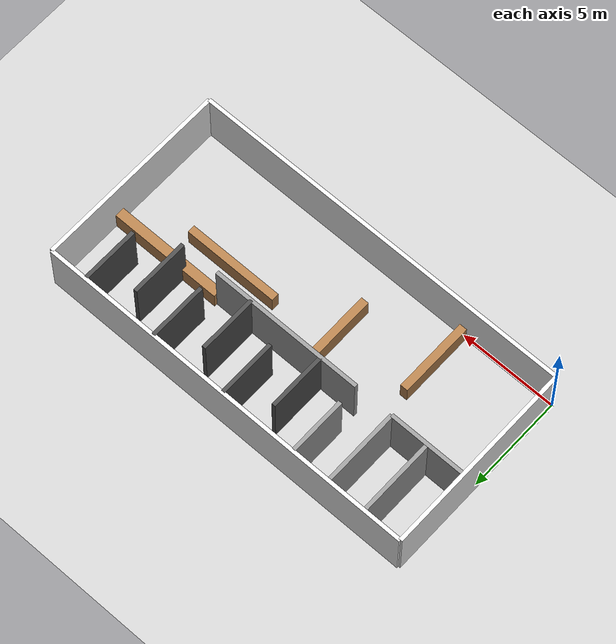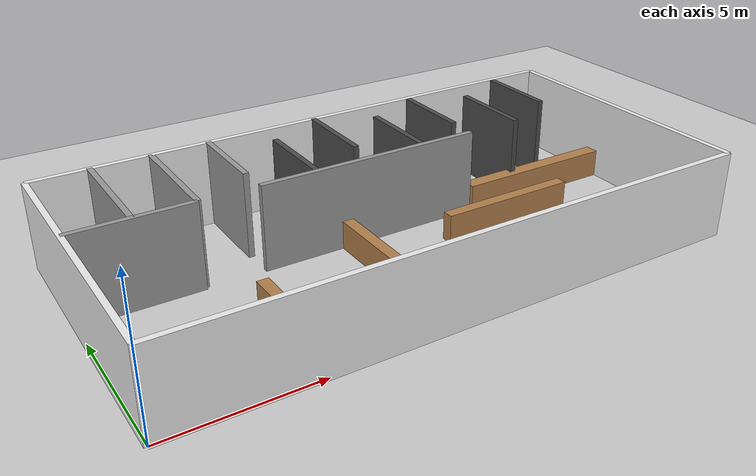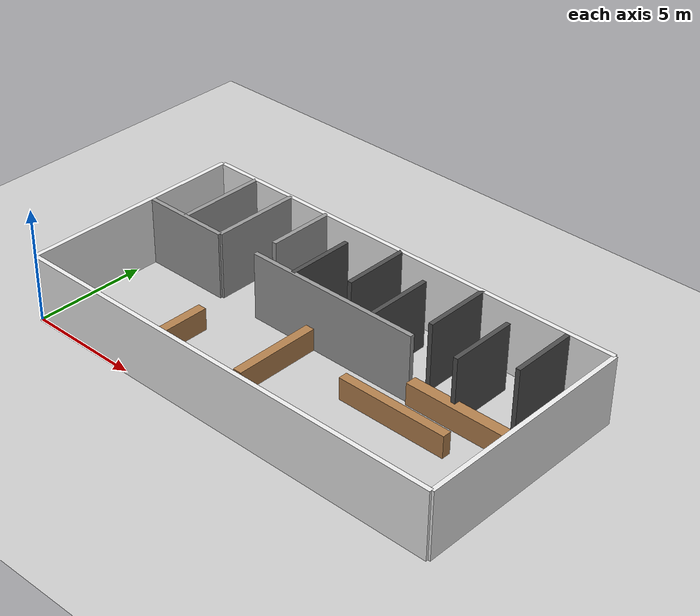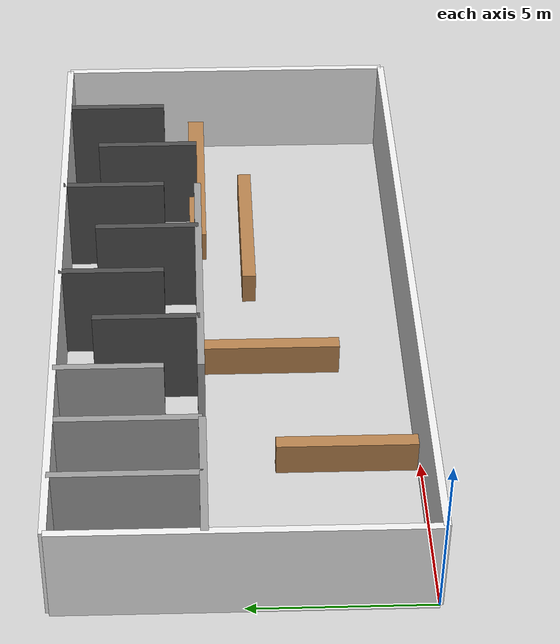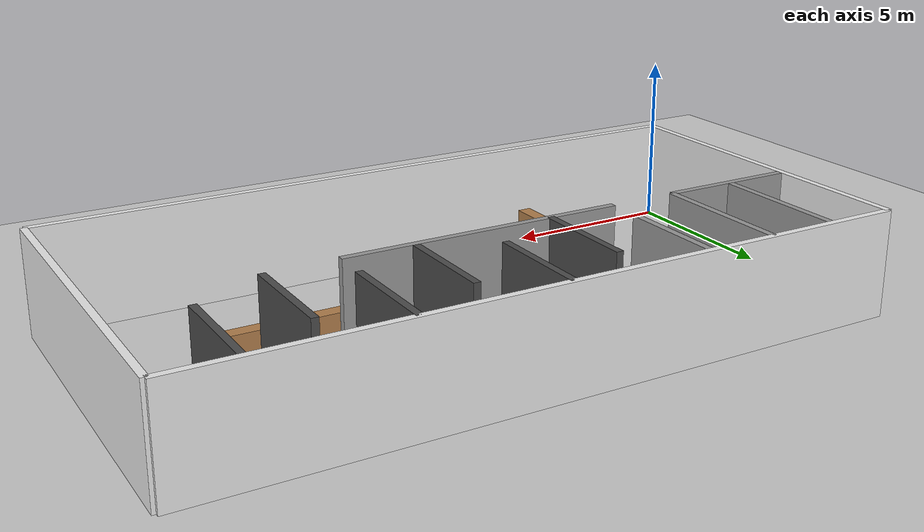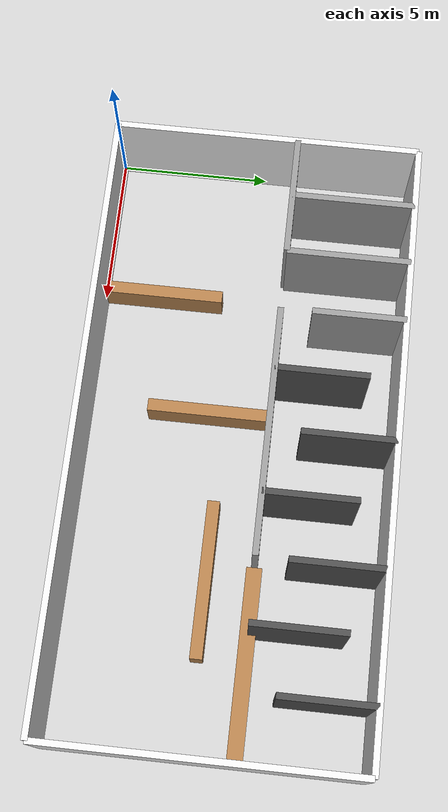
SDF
<sdf version="1.5">
 <world name="restaurant_world_fidel">
  <include><uri>model://sun</uri></include>
  <include><uri>model://ground_plane</uri></include>
  <model name="murs_restaurant">
   <static>true</static>
   <link name="mur_haut">
    <pose>10 10 1.5 0 0 0</pose>
    <collision name="c1"><geometry><box><size>20 0.2 3</size></box></geometry></collision>
    <visual name="v1">
     <geometry><box><size>20 0.2 3</size></box></geometry>
     <material><script><name>Gazebo/White</name></script></material>
    </visual>
   </link>
   <link name="mur_bas">
    <pose>10 0 1.5 0 0 0</pose>
    <collision name="c2"><geometry><box><size>20 0.2 3</size></box></geometry></collision>
    <visual name="v2">
     <geometry><box><size>20 0.2 3</size></box></geometry>
     <material><script><name>Gazebo/White</name></script></material>
    </visual>
   </link>
   <link name="mur_gauche">
    <pose>0 5 1.5 0 0 0</pose>
    <collision name="c3"><geometry><box><size>0.2 10 3</size></box></geometry></collision>
    <visual name="v3">
     <geometry><box><size>0.2 10 3</size></box></geometry>
     <material><script><name>Gazebo/White</name></script></material>
    </visual>
   </link>
   <link name="mur_droit">
    <pose>20 5 1.5 0 0 0</pose>
    <collision name="c4"><geometry><box><size>0.2 10 3</size></box></geometry></collision>
    <visual name="v4">
     <geometry><box><size>0.2 10 3</size></box></geometry>
     <material><script><name>Gazebo/White</name></script></material>
    </visual>
   </link>
   <link name="mur_horiz_gauche">
    <pose>2 6 1.5 0 0 0</pose>
    <collision name="c5"><geometry><box><size>4 0.2 3</size></box></geometry></collision>
    <visual name="v5">
     <geometry><box><size>4 0.2 3</size></box></geometry>
     <material><script><name>Gazebo/Grey</name></script></material>
    </visual>
   </link>
   <link name="mur_horiz_milieu">
    <pose>10 6 1.5 0 0 0</pose>
    <collision name="c6"><geometry><box><size>8 0.2 3</size></box></geometry></collision>
    <visual name="v6">
     <geometry><box><size>8 0.2 3</size></box></geometry>
     <material><script><name>Gazebo/Grey</name></script></material>
    </visual>
   </link>
   <link name="comptoir">
    <pose>17 6 0.5 0 0 0</pose>
    <collision name="c7"><geometry><box><size>6 0.5 1</size></box></geometry></collision>
    <visual name="v7">
     <geometry><box><size>6 0.5 1</size></box></geometry>
     <material><script><name>Gazebo/Wood</name></script></material>
    </visual>
   </link>
   <link name="mur_vert_toilettes">
    <pose>4 8 1.5 0 0 0</pose>
    <collision name="c8"><geometry><box><size>0.2 4 3</size></box></geometry></collision>
    <visual name="v8">
     <geometry><box><size>0.2 4 3</size></box></geometry>
     <material><script><name>Gazebo/Grey</name></script></material>
    </visual>
   </link>
   <link name="mur_vert_sep_toilettes">
    <pose>2 8 1.5 0 0 0</pose>
    <collision name="c9"><geometry><box><size>0.2 4 3</size></box></geometry></collision>
    <visual name="v9">
     <geometry><box><size>0.2 4 3</size></box></geometry>
     <material><script><name>Gazebo/Grey</name></script></material>
    </visual>
   </link>
   <link name="mur_vert_cuisine">
    <pose>6 8.5 1.5 0 0 0</pose>
    <collision name="c10"><geometry><box><size>0.2 3 3</size></box></geometry></collision>
    <visual name="v10">
     <geometry><box><size>0.2 3 3</size></box></geometry>
     <material><script><name>Gazebo/Grey</name></script></material>
    </visual>
   </link>
   <link name="maze_1">
    <pose>8 7.5 1.5 0 0 0</pose>
    <collision name="cm1"><geometry><box><size>0.2 3 3</size></box></geometry></collision>
    <visual name="vm1">
     <geometry><box><size>0.2 3 3</size></box></geometry>
     <material><script><name>Gazebo/DarkGrey</name></script></material>
    </visual>
   </link>
   <link name="maze_2">
    <pose>10 8.5 1.5 0 0 0</pose>
    <collision name="cm2"><geometry><box><size>0.2 3 3</size></box></geometry></collision>
    <visual name="vm2">
     <geometry><box><size>0.2 3 3</size></box></geometry>
     <material><script><name>Gazebo/DarkGrey</name></script></material>
    </visual>
   </link>
   <link name="maze_3">
    <pose>12 7.5 1.5 0 0 0</pose>
    <collision name="cm3"><geometry><box><size>0.2 3 3</size></box></geometry></collision>
    <visual name="vm3">
     <geometry><box><size>0.2 3 3</size></box></geometry>
     <material><script><name>Gazebo/DarkGrey</name></script></material>
    </visual>
   </link>
   <link name="maze_4">
    <pose>14 8.5 1.5 0 0 0</pose>
    <collision name="cm4"><geometry><box><size>0.2 3 3</size></box></geometry></collision>
    <visual name="vm4">
     <geometry><box><size>0.2 3 3</size></box></geometry>
     <material><script><name>Gazebo/DarkGrey</name></script></material>
    </visual>
   </link>
   <link name="maze_5">
    <pose>16 7.5 1.5 0 0 0</pose>
    <collision name="cm5"><geometry><box><size>0.2 3 3</size></box></geometry></collision>
    <visual name="vm5">
     <geometry><box><size>0.2 3 3</size></box></geometry>
     <material><script><name>Gazebo/DarkGrey</name></script></material>
    </visual>
   </link>
   <link name="maze_6">
    <pose>18 8.5 1.5 0 0 0</pose>
    <collision name="cm6"><geometry><box><size>0.2 3 3</size></box></geometry></collision>
    <visual name="vm6">
     <geometry><box><size>0.2 3 3</size></box></geometry>
     <material><script><name>Gazebo/DarkGrey</name></script></material>
    </visual>
   </link>
   <link name="separateur_bois_1">
    <pose>5 2 0.5 0 0 0</pose>
    <collision name="c_sep1"><geometry><box><size>0.4 4 1</size></box></geometry></collision>
    <visual name="v_sep1">
     <geometry><box><size>0.4 4 1</size></box></geometry>
     <material><script><name>Gazebo/Wood</name></script></material>
    </visual>
   </link>
   <link name="separateur_bois_2">
    <pose>9 4 0.5 0 0 0</pose>
    <collision name="c_sep2"><geometry><box><size>0.4 4 1</size></box></geometry></collision>
    <visual name="v_sep2">
     <geometry><box><size>0.4 4 1</size></box></geometry>
     <material><script><name>Gazebo/Wood</name></script></material>
    </visual>
   </link>
   <link name="separateur_bois_3">
    <pose>14.5 4.5 0.5 0 0 0</pose>
    <collision name="c_sep3"><geometry><box><size>5 0.4 1</size></box></geometry></collision>
    <visual name="v_sep3">
     <geometry><box><size>5 0.4 1</size></box></geometry>
     <material><script><name>Gazebo/Wood</name></script></material>
    </visual>
   </link>
  </model>
 </world>
</sdf>
